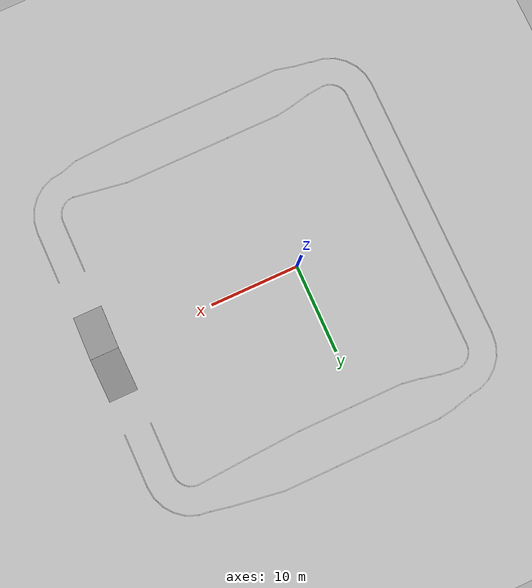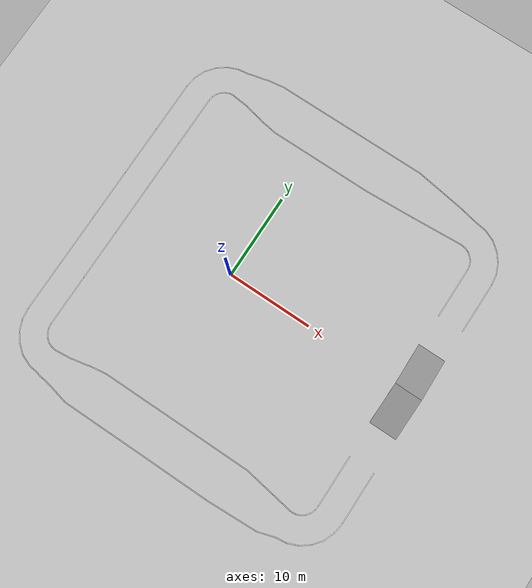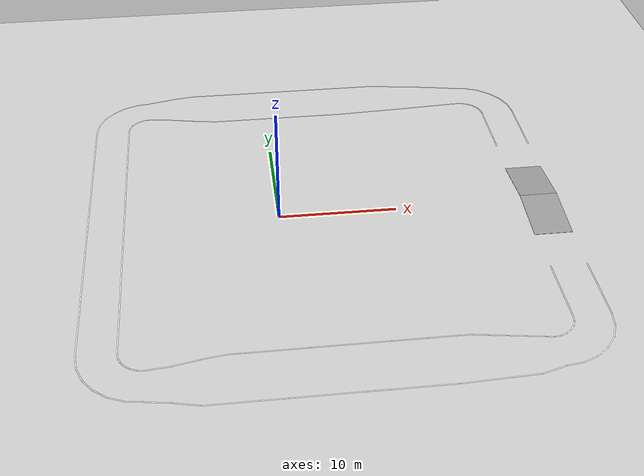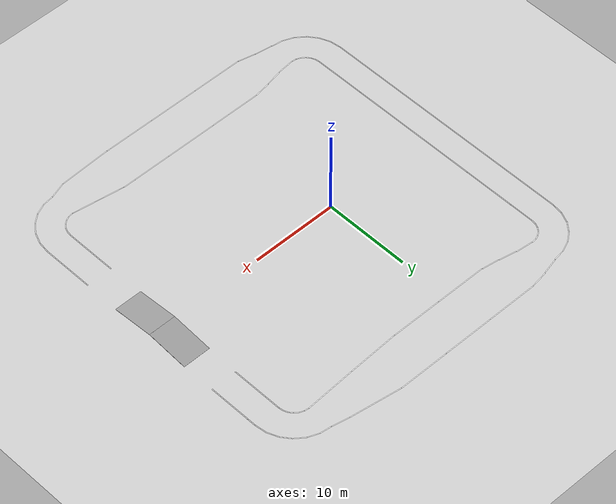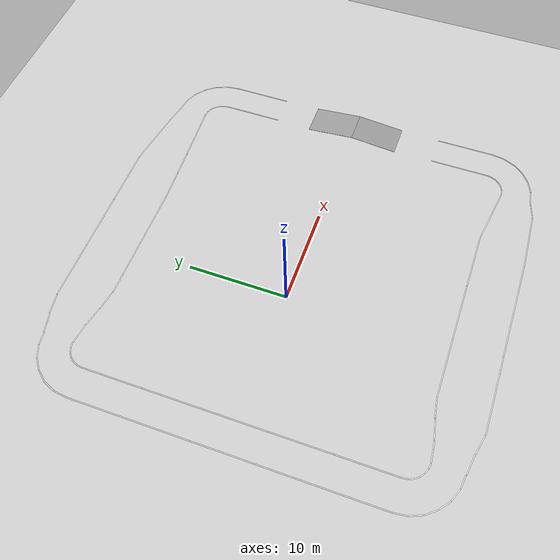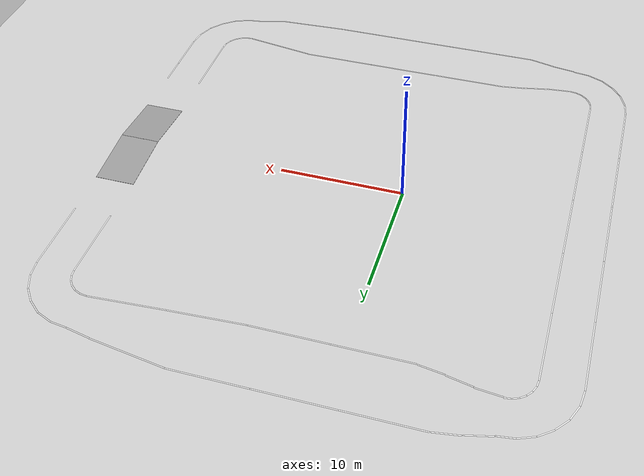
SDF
<sdf version="1.7">
 <world name="default">
  <light name="sun" type="directional">
   <pose>0 0 10 0 -0 0</pose>
   <diffuse>0.8 0.8 0.8 1</diffuse>
   <specular>0.2 0.2 0.2 1</specular>
   <attenuation>
    <range>1000</range>
    <constant>0.9</constant>
    <linear>0.01</linear>
    <quadratic>0.001</quadratic>
   </attenuation>
   <direction>-0.5 0.1 -0.9</direction>
   <spot><inner_angle>0</inner_angle><outer_angle>0</outer_angle><falloff>0</falloff></spot>
  </light>
  <model name="ground_plane">
   <static>1</static>
   <link name="link">
    <collision name="collision">
     <geometry><plane><normal>0 0 1</normal><size>100 100</size></plane></geometry>
     <surface>
      <contact><collide_bitmask>65535</collide_bitmask></contact>
      <friction><ode><mu>100</mu><mu2>50</mu2></ode></friction>
     </surface>
    </collision>
    <visual name="visual">
     <cast_shadows>0</cast_shadows>
     <geometry><plane><normal>0 0 1</normal><size>100 100</size></plane></geometry>
     <material>
      <script><uri>file://media/materials/scripts/gazebo.material</uri><name>Gazebo/Grey</name></script>
     </material>
    </visual>
   </link>
  </model>
  <gravity>0 0 -9.8</gravity>
  <magnetic_field>6e-06 2.3e-05 -4.2e-05</magnetic_field>
  <atmosphere type="adiabatic"/>
  <physics type="ode">
   <max_step_size>0.001</max_step_size>
   <real_time_factor>1</real_time_factor>
   <real_time_update_rate>1000</real_time_update_rate>
  </physics>
  <scene><ambient>0.4 0.4 0.4 1</ambient><background>0.7 0.7 0.7 1</background><shadows>1</shadows></scene>
  <audio><device>default</device></audio>
  <spherical_coordinates>
   <surface_model>EARTH_WGS84</surface_model>
   <latitude_deg>42.668112</latitude_deg>
   <longitude_deg>-83.219140</longitude_deg>
   <elevation>488.0</elevation>
   <heading_deg>180</heading_deg>
  </spherical_coordinates>
  <model name="Lane Straight Pair 6m">
   <static>1</static>
   <link name="link">
    <collision name="collision">
     <pose>0 0 -0.002 0 -0 0</pose>
     <geometry><box><size>0.5 0.5 0.001</size></box></geometry>
    </collision>
    <visual name="lane_0">
     <pose>0 1 0.001 0 -0 0</pose>
     <cast_shadows>0</cast_shadows>
     <geometry><plane><normal>0 0 1</normal><size>6 0.1</size></plane></geometry>
     <material>
      <script><uri>file://media/materials/scripts/gazebo.material</uri><name>Gazebo/White</name></script>
     </material>
    </visual>
    <visual name="lane_1">
     <pose>0 -2 0.001 0 -0 0</pose>
     <cast_shadows>0</cast_shadows>
     <geometry><plane><normal>0 0 1</normal><size>6 0.1</size></plane></geometry>
     <material>
      <script><uri>file://media/materials/scripts/gazebo.material</uri><name>Gazebo/White</name></script>
     </material>
    </visual>
   </link>
   <pose>-15 0 0 0 -0 1.5707</pose>
  </model>
  <model name="Lane Straight Pair 6m_0">
   <static>1</static>
   <link name="link">
    <collision name="collision">
     <pose>0 0 -0.002 0 -0 0</pose>
     <geometry><box><size>0.5 0.5 0.001</size></box></geometry>
    </collision>
    <visual name="lane_0">
     <pose>0 1 0.001 0 -0 0</pose>
     <cast_shadows>0</cast_shadows>
     <geometry><plane><normal>0 0 1</normal><size>6 0.1</size></plane></geometry>
     <material>
      <script><uri>file://media/materials/scripts/gazebo.material</uri><name>Gazebo/White</name></script>
     </material>
    </visual>
    <visual name="lane_1">
     <pose>0 -2 0.001 0 -0 0</pose>
     <cast_shadows>0</cast_shadows>
     <geometry><plane><normal>0 0 1</normal><size>6 0.1</size></plane></geometry>
     <material>
      <script><uri>file://media/materials/scripts/gazebo.material</uri><name>Gazebo/White</name></script>
     </material>
    </visual>
   </link>
   <pose>-15 6 0 0 -0 1.5707</pose>
  </model>
  <model name="Lane Straight Pair 6m_1">
   <static>1</static>
   <link name="link">
    <collision name="collision">
     <pose>0 0 -0.002 0 -0 0</pose>
     <geometry><box><size>0.5 0.5 0.001</size></box></geometry>
    </collision>
    <visual name="lane_0">
     <pose>0 1 0.001 0 -0 0</pose>
     <cast_shadows>0</cast_shadows>
     <geometry><plane><normal>0 0 1</normal><size>6 0.1</size></plane></geometry>
     <material>
      <script><uri>file://media/materials/scripts/gazebo.material</uri><name>Gazebo/White</name></script>
     </material>
    </visual>
    <visual name="lane_1">
     <pose>0 -2 0.001 0 -0 0</pose>
     <cast_shadows>0</cast_shadows>
     <geometry><plane><normal>0 0 1</normal><size>6 0.1</size></plane></geometry>
     <material>
      <script><uri>file://media/materials/scripts/gazebo.material</uri><name>Gazebo/White</name></script>
     </material>
    </visual>
   </link>
   <pose>-15 12 0 0 -0 1.5707</pose>
  </model>
  <model name="Lane Straight Pair 6m_2">
   <static>1</static>
   <link name="link">
    <collision name="collision">
     <pose>0 0 -0.002 0 -0 0</pose>
     <geometry><box><size>0.5 0.5 0.001</size></box></geometry>
    </collision>
    <visual name="lane_0">
     <pose>0 1 0.001 0 -0 0</pose>
     <cast_shadows>0</cast_shadows>
     <geometry><plane><normal>0 0 1</normal><size>6 0.1</size></plane></geometry>
     <material>
      <script><uri>file://media/materials/scripts/gazebo.material</uri><name>Gazebo/White</name></script>
     </material>
    </visual>
    <visual name="lane_1">
     <pose>0 -2 0.001 0 -0 0</pose>
     <cast_shadows>0</cast_shadows>
     <geometry><plane><normal>0 0 1</normal><size>6 0.1</size></plane></geometry>
     <material>
      <script><uri>file://media/materials/scripts/gazebo.material</uri><name>Gazebo/White</name></script>
     </material>
    </visual>
   </link>
   <pose>-15 -6 0 0 -0 1.5707</pose>
  </model>
  <model name="Lane Straight Pair 6m_3">
   <static>1</static>
   <link name="link">
    <collision name="collision">
     <pose>0 0 -0.002 0 -0 0</pose>
     <geometry><box><size>0.5 0.5 0.001</size></box></geometry>
    </collision>
    <visual name="lane_0">
     <pose>0 1 0.001 0 -0 0</pose>
     <cast_shadows>0</cast_shadows>
     <geometry><plane><normal>0 0 1</normal><size>6 0.1</size></plane></geometry>
     <material>
      <script><uri>file://media/materials/scripts/gazebo.material</uri><name>Gazebo/White</name></script>
     </material>
    </visual>
    <visual name="lane_1">
     <pose>0 -2 0.001 0 -0 0</pose>
     <cast_shadows>0</cast_shadows>
     <geometry><plane><normal>0 0 1</normal><size>6 0.1</size></plane></geometry>
     <material>
      <script><uri>file://media/materials/scripts/gazebo.material</uri><name>Gazebo/White</name></script>
     </material>
    </visual>
   </link>
   <pose>-15 -12 0 0 -0 1.5707</pose>
  </model>
  <model name="Lane Curve Pair 2m">
   <static>1</static>
   <link name="link">
    <collision name="collision">
     <pose>0.5 0.5 -0.002 0 -0 0</pose>
     <geometry><box><size>0.5 0.5 0.001</size></box></geometry>
    </collision>
    <visual name="lane_l0">
     <pose>4.9148 0.64705 0.001 0 -0 1.7017</pose>
     <cast_shadows>0</cast_shadows>
     <geometry><plane><normal>0 0 1</normal><size>1.309 0.1</size></plane></geometry>
     <material>
      <script><uri>file://media/materials/scripts/gazebo.material</uri><name>Gazebo/White</name></script>
     </material>
    </visual>
    <visual name="lane_l15">
     <pose>4.5799 1.897 0.001 0 -0 1.9635</pose>
     <cast_shadows>0</cast_shadows>
     <geometry><plane><normal>0 0 1</normal><size>1.309 0.1</size></plane></geometry>
     <material>
      <script><uri>file://media/materials/scripts/gazebo.material</uri><name>Gazebo/White</name></script>
     </material>
    </visual>
    <visual name="lane_l30">
     <pose>3.9328 3.0178 0.001 0 -0 2.2253</pose>
     <cast_shadows>0</cast_shadows>
     <geometry><plane><normal>0 0 1</normal><size>1.309 0.1</size></plane></geometry>
     <material>
      <script><uri>file://media/materials/scripts/gazebo.material</uri><name>Gazebo/White</name></script>
     </material>
    </visual>
    <visual name="lane_l45">
     <pose>3.0178 3.9328 0.001 0 -0 2.4571</pose>
     <cast_shadows>0</cast_shadows>
     <geometry><plane><normal>0 0 1</normal><size>1.309 0.1</size></plane></geometry>
     <material>
      <script><uri>file://media/materials/scripts/gazebo.material</uri><name>Gazebo/White</name></script>
     </material>
    </visual>
    <visual name="lane_l60">
     <pose>1.897 4.5799 0.001 0 -0 2.7489</pose>
     <cast_shadows>0</cast_shadows>
     <geometry><plane><normal>0 0 1</normal><size>1.309 0.1</size></plane></geometry>
     <material>
      <script><uri>file://media/materials/scripts/gazebo.material</uri><name>Gazebo/White</name></script>
     </material>
    </visual>
    <visual name="lane_l75">
     <pose>0.64705 4.9148 0.001 0 -0 3.0107</pose>
     <cast_shadows>0</cast_shadows>
     <geometry><plane><normal>0 0 1</normal><size>1.309 0.1</size></plane></geometry>
     <material>
      <script><uri>file://media/materials/scripts/gazebo.material</uri><name>Gazebo/White</name></script>
     </material>
    </visual>
    <visual name="lane_r0">
     <pose>1.9659 0.25882 0.001 0 -0 1.7017</pose>
     <cast_shadows>0</cast_shadows>
     <geometry><plane><normal>0 0 1</normal><size>0.5236 0.1</size></plane></geometry>
     <material>
      <script><uri>file://media/materials/scripts/gazebo.material</uri><name>Gazebo/White</name></script>
     </material>
    </visual>
    <visual name="lane_r15">
     <pose>1.832 0.75882 0.001 0 -0 1.9635</pose>
     <cast_shadows>0</cast_shadows>
     <geometry><plane><normal>0 0 1</normal><size>0.5236 0.1</size></plane></geometry>
     <material>
      <script><uri>file://media/materials/scripts/gazebo.material</uri><name>Gazebo/White</name></script>
     </material>
    </visual>
    <visual name="lane_r30">
     <pose>1.5731 1.2071 0.001 0 -0 2.2253</pose>
     <cast_shadows>0</cast_shadows>
     <geometry><plane><normal>0 0 1</normal><size>0.5236 0.1</size></plane></geometry>
     <material>
      <script><uri>file://media/materials/scripts/gazebo.material</uri><name>Gazebo/White</name></script>
     </material>
    </visual>
    <visual name="lane_r45">
     <pose>1.2071 1.5731 0.001 0 -0 2.4571</pose>
     <cast_shadows>0</cast_shadows>
     <geometry><plane><normal>0 0 1</normal><size>0.5236 0.1</size></plane></geometry>
     <material>
      <script><uri>file://media/materials/scripts/gazebo.material</uri><name>Gazebo/White</name></script>
     </material>
    </visual>
    <visual name="lane_r60">
     <pose>0.75882 1.832 0.001 0 -0 2.7489</pose>
     <cast_shadows>0</cast_shadows>
     <geometry><plane><normal>0 0 1</normal><size>0.5236 0.1</size></plane></geometry>
     <material>
      <script><uri>file://media/materials/scripts/gazebo.material</uri><name>Gazebo/White</name></script>
     </material>
    </visual>
    <visual name="lane_r75">
     <pose>0.25882 1.9659 0.001 0 -0 3.0107</pose>
     <cast_shadows>0</cast_shadows>
     <geometry><plane><normal>0 0 1</normal><size>0.5236 0.1</size></plane></geometry>
     <material>
      <script><uri>file://media/materials/scripts/gazebo.material</uri><name>Gazebo/White</name></script>
     </material>
    </visual>
   </link>
   <pose>-11 15 0 0 -0 1.5707</pose>
  </model>
  <model name="Lane Curve Pair 2m_0">
   <static>1</static>
   <link name="link">
    <collision name="collision">
     <pose>0.5 0.5 -0.002 0 -0 0</pose>
     <geometry><box><size>0.5 0.5 0.001</size></box></geometry>
    </collision>
    <visual name="lane_l0">
     <pose>4.9148 0.64705 0.001 0 -0 1.7017</pose>
     <cast_shadows>0</cast_shadows>
     <geometry><plane><normal>0 0 1</normal><size>1.309 0.1</size></plane></geometry>
     <material>
      <script><uri>file://media/materials/scripts/gazebo.material</uri><name>Gazebo/White</name></script>
     </material>
    </visual>
    <visual name="lane_l15">
     <pose>4.5799 1.897 0.001 0 -0 1.9635</pose>
     <cast_shadows>0</cast_shadows>
     <geometry><plane><normal>0 0 1</normal><size>1.309 0.1</size></plane></geometry>
     <material>
      <script><uri>file://media/materials/scripts/gazebo.material</uri><name>Gazebo/White</name></script>
     </material>
    </visual>
    <visual name="lane_l30">
     <pose>3.9328 3.0178 0.001 0 -0 2.2253</pose>
     <cast_shadows>0</cast_shadows>
     <geometry><plane><normal>0 0 1</normal><size>1.309 0.1</size></plane></geometry>
     <material>
      <script><uri>file://media/materials/scripts/gazebo.material</uri><name>Gazebo/White</name></script>
     </material>
    </visual>
    <visual name="lane_l45">
     <pose>3.0178 3.9328 0.001 0 -0 2.4571</pose>
     <cast_shadows>0</cast_shadows>
     <geometry><plane><normal>0 0 1</normal><size>1.309 0.1</size></plane></geometry>
     <material>
      <script><uri>file://media/materials/scripts/gazebo.material</uri><name>Gazebo/White</name></script>
     </material>
    </visual>
    <visual name="lane_l60">
     <pose>1.897 4.5799 0.001 0 -0 2.7489</pose>
     <cast_shadows>0</cast_shadows>
     <geometry><plane><normal>0 0 1</normal><size>1.309 0.1</size></plane></geometry>
     <material>
      <script><uri>file://media/materials/scripts/gazebo.material</uri><name>Gazebo/White</name></script>
     </material>
    </visual>
    <visual name="lane_l75">
     <pose>0.64705 4.9148 0.001 0 -0 3.0107</pose>
     <cast_shadows>0</cast_shadows>
     <geometry><plane><normal>0 0 1</normal><size>1.309 0.1</size></plane></geometry>
     <material>
      <script><uri>file://media/materials/scripts/gazebo.material</uri><name>Gazebo/White</name></script>
     </material>
    </visual>
    <visual name="lane_r0">
     <pose>1.9659 0.25882 0.001 0 -0 1.7017</pose>
     <cast_shadows>0</cast_shadows>
     <geometry><plane><normal>0 0 1</normal><size>0.5236 0.1</size></plane></geometry>
     <material>
      <script><uri>file://media/materials/scripts/gazebo.material</uri><name>Gazebo/White</name></script>
     </material>
    </visual>
    <visual name="lane_r15">
     <pose>1.832 0.75882 0.001 0 -0 1.9635</pose>
     <cast_shadows>0</cast_shadows>
     <geometry><plane><normal>0 0 1</normal><size>0.5236 0.1</size></plane></geometry>
     <material>
      <script><uri>file://media/materials/scripts/gazebo.material</uri><name>Gazebo/White</name></script>
     </material>
    </visual>
    <visual name="lane_r30">
     <pose>1.5731 1.2071 0.001 0 -0 2.2253</pose>
     <cast_shadows>0</cast_shadows>
     <geometry><plane><normal>0 0 1</normal><size>0.5236 0.1</size></plane></geometry>
     <material>
      <script><uri>file://media/materials/scripts/gazebo.material</uri><name>Gazebo/White</name></script>
     </material>
    </visual>
    <visual name="lane_r45">
     <pose>1.2071 1.5731 0.001 0 -0 2.4571</pose>
     <cast_shadows>0</cast_shadows>
     <geometry><plane><normal>0 0 1</normal><size>0.5236 0.1</size></plane></geometry>
     <material>
      <script><uri>file://media/materials/scripts/gazebo.material</uri><name>Gazebo/White</name></script>
     </material>
    </visual>
    <visual name="lane_r60">
     <pose>0.75882 1.832 0.001 0 -0 2.7489</pose>
     <cast_shadows>0</cast_shadows>
     <geometry><plane><normal>0 0 1</normal><size>0.5236 0.1</size></plane></geometry>
     <material>
      <script><uri>file://media/materials/scripts/gazebo.material</uri><name>Gazebo/White</name></script>
     </material>
    </visual>
    <visual name="lane_r75">
     <pose>0.25882 1.9659 0.001 0 -0 3.0107</pose>
     <cast_shadows>0</cast_shadows>
     <geometry><plane><normal>0 0 1</normal><size>0.5236 0.1</size></plane></geometry>
     <material>
      <script><uri>file://media/materials/scripts/gazebo.material</uri><name>Gazebo/White</name></script>
     </material>
    </visual>
   </link>
   <pose>-11 -15 0 0 -0 3.1414</pose>
  </model>
  <model name="Lane Straight Single 2m">
   <static>1</static>
   <link name="link">
    <collision name="collision">
     <pose>0 0 -0.002 0 -0 0</pose>
     <geometry><box><size>0.5 0.5 0.001</size></box></geometry>
    </collision>
    <visual name="lane">
     <pose>0 0 0.001 0 -0 0</pose>
     <cast_shadows>0</cast_shadows>
     <geometry><plane><normal>0 0 1</normal><size>2 0.1</size></plane></geometry>
     <material>
      <script><uri>file://media/materials/scripts/gazebo.material</uri><name>Gazebo/White</name></script>
     </material>
    </visual>
   </link>
   <pose>-10.005 20.275 0 0 -0 0.23</pose>
  </model>
  <model name="Lane Straight Single 2m_0">
   <static>1</static>
   <link name="link">
    <collision name="collision">
     <pose>0 0 -0.002 0 -0 0</pose>
     <geometry><box><size>0.5 0.5 0.001</size></box></geometry>
    </collision>
    <visual name="lane">
     <pose>0 0 0.001 0 -0 0</pose>
     <cast_shadows>0</cast_shadows>
     <geometry><plane><normal>0 0 1</normal><size>2 0.1</size></plane></geometry>
     <material>
      <script><uri>file://media/materials/scripts/gazebo.material</uri><name>Gazebo/White</name></script>
     </material>
    </visual>
   </link>
   <pose>-10 16.85 0 0 0 -0.1</pose>
  </model>
  <model name="Lane Straight Single 2m_1">
   <static>1</static>
   <link name="link">
    <collision name="collision">
     <pose>0 0 -0.002 0 -0 0</pose>
     <geometry><box><size>0.5 0.5 0.001</size></box></geometry>
    </collision>
    <visual name="lane">
     <pose>0 0 0.001 0 -0 0</pose>
     <cast_shadows>0</cast_shadows>
     <geometry><plane><normal>0 0 1</normal><size>2 0.1</size></plane></geometry>
     <material>
      <script><uri>file://media/materials/scripts/gazebo.material</uri><name>Gazebo/White</name></script>
     </material>
    </visual>
   </link>
   <pose>-8.03 20.7 0 0 -0 0.15</pose>
  </model>
  <model name="Lane Straight Single 2m_2">
   <static>1</static>
   <link name="link">
    <collision name="collision">
     <pose>0 0 -0.002 0 -0 0</pose>
     <geometry><box><size>0.5 0.5 0.001</size></box></geometry>
    </collision>
    <visual name="lane">
     <pose>0 0 0.001 0 -0 0</pose>
     <cast_shadows>0</cast_shadows>
     <geometry><plane><normal>0 0 1</normal><size>2 0.1</size></plane></geometry>
     <material>
      <script><uri>file://media/materials/scripts/gazebo.material</uri><name>Gazebo/White</name></script>
     </material>
    </visual>
   </link>
   <pose>-8 16.5 0 0 0 -0.199999</pose>
  </model>
  <model name="Lane Straight Single 2m_3">
   <static>1</static>
   <link name="link">
    <collision name="collision">
     <pose>0 0 -0.002 0 -0 0</pose>
     <geometry><box><size>0.5 0.5 0.001</size></box></geometry>
    </collision>
    <visual name="lane">
     <pose>0 0 0.001 0 -0 0</pose>
     <cast_shadows>0</cast_shadows>
     <geometry><plane><normal>0 0 1</normal><size>2 0.1</size></plane></geometry>
     <material>
      <script><uri>file://media/materials/scripts/gazebo.material</uri><name>Gazebo/White</name></script>
     </material>
    </visual>
   </link>
   <pose>-6 16.1 0 0 0 -0.15</pose>
  </model>
  <model name="Lane Straight Single 6m">
   <static>1</static>
   <link name="link">
    <collision name="collision">
     <pose>0 0 -0.002 0 -0 0</pose>
     <geometry><box><size>0.5 0.5 0.001</size></box></geometry>
    </collision>
    <visual name="lane">
     <pose>0 0 0.001 0 -0 0</pose>
     <cast_shadows>0</cast_shadows>
     <geometry><plane><normal>0 0 1</normal><size>6 0.1</size></plane></geometry>
     <material>
      <script><uri>file://media/materials/scripts/gazebo.material</uri><name>Gazebo/White</name></script>
     </material>
    </visual>
   </link>
   <pose>-4.01204 20.8673 0 0 -0 0</pose>
  </model>
  <model name="Lane Straight Single 6m_0">
   <static>1</static>
   <link name="link">
    <collision name="collision">
     <pose>0 0 -0.002 0 -0 0</pose>
     <geometry><box><size>0.5 0.5 0.001</size></box></geometry>
    </collision>
    <visual name="lane">
     <pose>0 0 0.001 0 -0 0</pose>
     <cast_shadows>0</cast_shadows>
     <geometry><plane><normal>0 0 1</normal><size>6 0.1</size></plane></geometry>
     <material>
      <script><uri>file://media/materials/scripts/gazebo.material</uri><name>Gazebo/White</name></script>
     </material>
    </visual>
   </link>
   <pose>-1.98032 15.9145 0 0 -0 0</pose>
  </model>
  <model name="Lane Straight Single 6m_1">
   <static>1</static>
   <link name="link">
    <collision name="collision">
     <pose>0 0 -0.002 0 -0 0</pose>
     <geometry><box><size>0.5 0.5 0.001</size></box></geometry>
    </collision>
    <visual name="lane">
     <pose>0 0 0.001 0 -0 0</pose>
     <cast_shadows>0</cast_shadows>
     <geometry><plane><normal>0 0 1</normal><size>6 0.1</size></plane></geometry>
     <material>
      <script><uri>file://media/materials/scripts/gazebo.material</uri><name>Gazebo/White</name></script>
     </material>
    </visual>
   </link>
   <pose>1.98526 20.8734 0 0 -0 0</pose>
  </model>
  <model name="Lane Straight Single 6m_2">
   <static>1</static>
   <link name="link">
    <collision name="collision">
     <pose>0 0 -0.002 0 -0 0</pose>
     <geometry><box><size>0.5 0.5 0.001</size></box></geometry>
    </collision>
    <visual name="lane">
     <pose>0 0 0.001 0 -0 0</pose>
     <cast_shadows>0</cast_shadows>
     <geometry><plane><normal>0 0 1</normal><size>6 0.1</size></plane></geometry>
     <material>
      <script><uri>file://media/materials/scripts/gazebo.material</uri><name>Gazebo/White</name></script>
     </material>
    </visual>
   </link>
   <pose>4.02648 15.9099 0 0 -0 0</pose>
  </model>
  <model name="Lane Straight Single 6m_3">
   <static>1</static>
   <link name="link">
    <collision name="collision">
     <pose>0 0 -0.002 0 -0 0</pose>
     <geometry><box><size>0.5 0.5 0.001</size></box></geometry>
    </collision>
    <visual name="lane">
     <pose>0 0 0.001 0 -0 0</pose>
     <cast_shadows>0</cast_shadows>
     <geometry><plane><normal>0 0 1</normal><size>6 0.1</size></plane></geometry>
     <material>
      <script><uri>file://media/materials/scripts/gazebo.material</uri><name>Gazebo/White</name></script>
     </material>
    </visual>
   </link>
   <pose>8.01121 20.8782 0 0 -0 0</pose>
  </model>
  <model name="Lane Curve Pair 2m_1">
   <static>1</static>
   <link name="link">
    <collision name="collision">
     <pose>0.5 0.5 -0.002 0 -0 0</pose>
     <geometry><box><size>0.5 0.5 0.001</size></box></geometry>
    </collision>
    <visual name="lane_l0">
     <pose>4.9148 0.64705 0.001 0 -0 1.7017</pose>
     <cast_shadows>0</cast_shadows>
     <geometry><plane><normal>0 0 1</normal><size>1.309 0.1</size></plane></geometry>
     <material>
      <script><uri>file://media/materials/scripts/gazebo.material</uri><name>Gazebo/White</name></script>
     </material>
    </visual>
    <visual name="lane_l15">
     <pose>4.5799 1.897 0.001 0 -0 1.9635</pose>
     <cast_shadows>0</cast_shadows>
     <geometry><plane><normal>0 0 1</normal><size>1.309 0.1</size></plane></geometry>
     <material>
      <script><uri>file://media/materials/scripts/gazebo.material</uri><name>Gazebo/White</name></script>
     </material>
    </visual>
    <visual name="lane_l30">
     <pose>3.9328 3.0178 0.001 0 -0 2.2253</pose>
     <cast_shadows>0</cast_shadows>
     <geometry><plane><normal>0 0 1</normal><size>1.309 0.1</size></plane></geometry>
     <material>
      <script><uri>file://media/materials/scripts/gazebo.material</uri><name>Gazebo/White</name></script>
     </material>
    </visual>
    <visual name="lane_l45">
     <pose>3.0178 3.9328 0.001 0 -0 2.4571</pose>
     <cast_shadows>0</cast_shadows>
     <geometry><plane><normal>0 0 1</normal><size>1.309 0.1</size></plane></geometry>
     <material>
      <script><uri>file://media/materials/scripts/gazebo.material</uri><name>Gazebo/White</name></script>
     </material>
    </visual>
    <visual name="lane_l60">
     <pose>1.897 4.5799 0.001 0 -0 2.7489</pose>
     <cast_shadows>0</cast_shadows>
     <geometry><plane><normal>0 0 1</normal><size>1.309 0.1</size></plane></geometry>
     <material>
      <script><uri>file://media/materials/scripts/gazebo.material</uri><name>Gazebo/White</name></script>
     </material>
    </visual>
    <visual name="lane_l75">
     <pose>0.64705 4.9148 0.001 0 -0 3.0107</pose>
     <cast_shadows>0</cast_shadows>
     <geometry><plane><normal>0 0 1</normal><size>1.309 0.1</size></plane></geometry>
     <material>
      <script><uri>file://media/materials/scripts/gazebo.material</uri><name>Gazebo/White</name></script>
     </material>
    </visual>
    <visual name="lane_r0">
     <pose>1.9659 0.25882 0.001 0 -0 1.7017</pose>
     <cast_shadows>0</cast_shadows>
     <geometry><plane><normal>0 0 1</normal><size>0.5236 0.1</size></plane></geometry>
     <material>
      <script><uri>file://media/materials/scripts/gazebo.material</uri><name>Gazebo/White</name></script>
     </material>
    </visual>
    <visual name="lane_r15">
     <pose>1.832 0.75882 0.001 0 -0 1.9635</pose>
     <cast_shadows>0</cast_shadows>
     <geometry><plane><normal>0 0 1</normal><size>0.5236 0.1</size></plane></geometry>
     <material>
      <script><uri>file://media/materials/scripts/gazebo.material</uri><name>Gazebo/White</name></script>
     </material>
    </visual>
    <visual name="lane_r30">
     <pose>1.5731 1.2071 0.001 0 -0 2.2253</pose>
     <cast_shadows>0</cast_shadows>
     <geometry><plane><normal>0 0 1</normal><size>0.5236 0.1</size></plane></geometry>
     <material>
      <script><uri>file://media/materials/scripts/gazebo.material</uri><name>Gazebo/White</name></script>
     </material>
    </visual>
    <visual name="lane_r45">
     <pose>1.2071 1.5731 0.001 0 -0 2.4571</pose>
     <cast_shadows>0</cast_shadows>
     <geometry><plane><normal>0 0 1</normal><size>0.5236 0.1</size></plane></geometry>
     <material>
      <script><uri>file://media/materials/scripts/gazebo.material</uri><name>Gazebo/White</name></script>
     </material>
    </visual>
    <visual name="lane_r60">
     <pose>0.75882 1.832 0.001 0 -0 2.7489</pose>
     <cast_shadows>0</cast_shadows>
     <geometry><plane><normal>0 0 1</normal><size>0.5236 0.1</size></plane></geometry>
     <material>
      <script><uri>file://media/materials/scripts/gazebo.material</uri><name>Gazebo/White</name></script>
     </material>
    </visual>
    <visual name="lane_r75">
     <pose>0.25882 1.9659 0.001 0 -0 3.0107</pose>
     <cast_shadows>0</cast_shadows>
     <geometry><plane><normal>0 0 1</normal><size>0.5236 0.1</size></plane></geometry>
     <material>
      <script><uri>file://media/materials/scripts/gazebo.material</uri><name>Gazebo/White</name></script>
     </material>
    </visual>
   </link>
   <pose>18.95 14.55 0 0 -0 0</pose>
  </model>
  <model name="Lane Straight Single 6m_4">
   <static>1</static>
   <link name="link">
    <collision name="collision">
     <pose>0 0 -0.002 0 -0 0</pose>
     <geometry><box><size>0.5 0.5 0.001</size></box></geometry>
    </collision>
    <visual name="lane">
     <pose>0 0 0.001 0 -0 0</pose>
     <cast_shadows>0</cast_shadows>
     <geometry><plane><normal>0 0 1</normal><size>6 0.1</size></plane></geometry>
     <material>
      <script><uri>file://media/materials/scripts/gazebo.material</uri><name>Gazebo/White</name></script>
     </material>
    </visual>
   </link>
   <pose>14 20.42 0 0 0 -0.15</pose>
  </model>
  <model name="Lane Straight Single 2m_4">
   <static>1</static>
   <link name="link">
    <collision name="collision">
     <pose>0 0 -0.002 0 -0 0</pose>
     <geometry><box><size>0.5 0.5 0.001</size></box></geometry>
    </collision>
    <visual name="lane">
     <pose>0 0 0.001 0 -0 0</pose>
     <cast_shadows>0</cast_shadows>
     <geometry><plane><normal>0 0 1</normal><size>2 0.1</size></plane></geometry>
     <material>
      <script><uri>file://media/materials/scripts/gazebo.material</uri><name>Gazebo/White</name></script>
     </material>
    </visual>
   </link>
   <pose>17.95 19.759 0 0 0 -0.2</pose>
  </model>
  <model name="Lane Straight Single 6m_5">
   <static>1</static>
   <link name="link">
    <collision name="collision">
     <pose>0 0 -0.002 0 -0 0</pose>
     <geometry><box><size>0.5 0.5 0.001</size></box></geometry>
    </collision>
    <visual name="lane">
     <pose>0 0 0.001 0 -0 0</pose>
     <cast_shadows>0</cast_shadows>
     <geometry><plane><normal>0 0 1</normal><size>6 0.1</size></plane></geometry>
     <material>
      <script><uri>file://media/materials/scripts/gazebo.material</uri><name>Gazebo/White</name></script>
     </material>
    </visual>
   </link>
   <pose>10 16.05 0 0 -0 0.05</pose>
  </model>
  <model name="Lane Straight Single 6m_6">
   <static>1</static>
   <link name="link">
    <collision name="collision">
     <pose>0 0 -0.002 0 -0 0</pose>
     <geometry><box><size>0.5 0.5 0.001</size></box></geometry>
    </collision>
    <visual name="lane">
     <pose>0 0 0.001 0 -0 0</pose>
     <cast_shadows>0</cast_shadows>
     <geometry><plane><normal>0 0 1</normal><size>6 0.1</size></plane></geometry>
     <material>
      <script><uri>file://media/materials/scripts/gazebo.material</uri><name>Gazebo/White</name></script>
     </material>
    </visual>
   </link>
   <pose>15.95 16.375 0 0 -0 0.059991</pose>
  </model>
  <model name="Lane Straight Pair 6m_4">
   <static>1</static>
   <link name="link">
    <collision name="collision">
     <pose>0 0 -0.002 0 -0 0</pose>
     <geometry><box><size>0.5 0.5 0.001</size></box></geometry>
    </collision>
    <visual name="lane_0">
     <pose>0 1 0.001 0 -0 0</pose>
     <cast_shadows>0</cast_shadows>
     <geometry><plane><normal>0 0 1</normal><size>6 0.1</size></plane></geometry>
     <material>
      <script><uri>file://media/materials/scripts/gazebo.material</uri><name>Gazebo/White</name></script>
     </material>
    </visual>
    <visual name="lane_1">
     <pose>0 -2 0.001 0 -0 0</pose>
     <cast_shadows>0</cast_shadows>
     <geometry><plane><normal>0 0 1</normal><size>6 0.1</size></plane></geometry>
     <material>
      <script><uri>file://media/materials/scripts/gazebo.material</uri><name>Gazebo/White</name></script>
     </material>
    </visual>
   </link>
   <pose>21.95 11.6 0 0 -0 1.5707</pose>
  </model>
  <model name="Lane Straight Single 2m_5">
   <static>1</static>
   <link name="link">
    <collision name="collision">
     <pose>0 0 -0.002 0 -0 0</pose>
     <geometry><box><size>0.5 0.5 0.001</size></box></geometry>
    </collision>
    <visual name="lane">
     <pose>0 0 0.001 0 -0 0</pose>
     <cast_shadows>0</cast_shadows>
     <geometry><plane><normal>0 0 1</normal><size>2 0.1</size></plane></geometry>
     <material>
      <script><uri>file://media/materials/scripts/gazebo.material</uri><name>Gazebo/White</name></script>
     </material>
    </visual>
   </link>
   <pose>-10 -20.2 0 0 0 -0.15</pose>
  </model>
  <model name="Lane Straight Single 2m_6">
   <static>1</static>
   <link name="link">
    <collision name="collision">
     <pose>0 0 -0.002 0 -0 0</pose>
     <geometry><box><size>0.5 0.5 0.001</size></box></geometry>
    </collision>
    <visual name="lane">
     <pose>0 0 0.001 0 -0 0</pose>
     <cast_shadows>0</cast_shadows>
     <geometry><plane><normal>0 0 1</normal><size>2 0.1</size></plane></geometry>
     <material>
      <script><uri>file://media/materials/scripts/gazebo.material</uri><name>Gazebo/White</name></script>
     </material>
    </visual>
   </link>
   <pose>-10 -16.9 0 0 -0 0.1</pose>
  </model>
  <model name="Lane Straight Single 2m_7">
   <static>1</static>
   <link name="link">
    <collision name="collision">
     <pose>0 0 -0.002 0 -0 0</pose>
     <geometry><box><size>0.5 0.5 0.001</size></box></geometry>
    </collision>
    <visual name="lane">
     <pose>0 0 0.001 0 -0 0</pose>
     <cast_shadows>0</cast_shadows>
     <geometry><plane><normal>0 0 1</normal><size>2 0.1</size></plane></geometry>
     <material>
      <script><uri>file://media/materials/scripts/gazebo.material</uri><name>Gazebo/White</name></script>
     </material>
    </visual>
   </link>
   <pose>-8.025 -16.575 0 0 -0 0.2</pose>
  </model>
  <model name="Lane Straight Single 2m_8">
   <static>1</static>
   <link name="link">
    <collision name="collision">
     <pose>0 0 -0.002 0 -0 0</pose>
     <geometry><box><size>0.5 0.5 0.001</size></box></geometry>
    </collision>
    <visual name="lane">
     <pose>0 0 0.001 0 -0 0</pose>
     <cast_shadows>0</cast_shadows>
     <geometry><plane><normal>0 0 1</normal><size>2 0.1</size></plane></geometry>
     <material>
      <script><uri>file://media/materials/scripts/gazebo.material</uri><name>Gazebo/White</name></script>
     </material>
    </visual>
   </link>
   <pose>-8.03 -20.6 0 0 0 -0.23</pose>
  </model>
  <model name="Lane Straight Single 2m_9">
   <static>1</static>
   <link name="link">
    <collision name="collision">
     <pose>0 0 -0.002 0 -0 0</pose>
     <geometry><box><size>0.5 0.5 0.001</size></box></geometry>
    </collision>
    <visual name="lane">
     <pose>0 0 0.001 0 -0 0</pose>
     <cast_shadows>0</cast_shadows>
     <geometry><plane><normal>0 0 1</normal><size>2 0.1</size></plane></geometry>
     <material>
      <script><uri>file://media/materials/scripts/gazebo.material</uri><name>Gazebo/White</name></script>
     </material>
    </visual>
   </link>
   <pose>-6.05 -16.2 0 0 -0 0.15</pose>
  </model>
  <model name="Lane Straight Single 6m_7">
   <static>1</static>
   <link name="link">
    <collision name="collision">
     <pose>0 0 -0.002 0 -0 0</pose>
     <geometry><box><size>0.5 0.5 0.001</size></box></geometry>
    </collision>
    <visual name="lane">
     <pose>0 0 0.001 0 -0 0</pose>
     <cast_shadows>0</cast_shadows>
     <geometry><plane><normal>0 0 1</normal><size>6 0.1</size></plane></geometry>
     <material>
      <script><uri>file://media/materials/scripts/gazebo.material</uri><name>Gazebo/White</name></script>
     </material>
    </visual>
   </link>
   <pose>-4.04735 -20.8469 0 0 -0 0</pose>
  </model>
  <model name="Lane Straight Single 6m_8">
   <static>1</static>
   <link name="link">
    <collision name="collision">
     <pose>0 0 -0.002 0 -0 0</pose>
     <geometry><box><size>0.5 0.5 0.001</size></box></geometry>
    </collision>
    <visual name="lane">
     <pose>0 0 0.001 0 -0 0</pose>
     <cast_shadows>0</cast_shadows>
     <geometry><plane><normal>0 0 1</normal><size>6 0.1</size></plane></geometry>
     <material>
      <script><uri>file://media/materials/scripts/gazebo.material</uri><name>Gazebo/White</name></script>
     </material>
    </visual>
   </link>
   <pose>1.96141 -20.8432 0 0 -0 0</pose>
  </model>
  <model name="Lane Straight Single 6m_9">
   <static>1</static>
   <link name="link">
    <collision name="collision">
     <pose>0 0 -0.002 0 -0 0</pose>
     <geometry><box><size>0.5 0.5 0.001</size></box></geometry>
    </collision>
    <visual name="lane">
     <pose>0 0 0.001 0 -0 0</pose>
     <cast_shadows>0</cast_shadows>
     <geometry><plane><normal>0 0 1</normal><size>6 0.1</size></plane></geometry>
     <material>
      <script><uri>file://media/materials/scripts/gazebo.material</uri><name>Gazebo/White</name></script>
     </material>
    </visual>
   </link>
   <pose>7.97 -20.85 0 0 -0 0</pose>
  </model>
  <model name="Lane Straight Single 6m_10">
   <static>1</static>
   <link name="link">
    <collision name="collision">
     <pose>0 0 -0.002 0 -0 0</pose>
     <geometry><box><size>0.5 0.5 0.001</size></box></geometry>
    </collision>
    <visual name="lane">
     <pose>0 0 0.001 0 -0 0</pose>
     <cast_shadows>0</cast_shadows>
     <geometry><plane><normal>0 0 1</normal><size>6 0.1</size></plane></geometry>
     <material>
      <script><uri>file://media/materials/scripts/gazebo.material</uri><name>Gazebo/White</name></script>
     </material>
    </visual>
   </link>
   <pose>-2.05671 -16.0504 0 0 -0 0</pose>
  </model>
  <model name="Lane Straight Single 6m_11">
   <static>1</static>
   <link name="link">
    <collision name="collision">
     <pose>0 0 -0.002 0 -0 0</pose>
     <geometry><box><size>0.5 0.5 0.001</size></box></geometry>
    </collision>
    <visual name="lane">
     <pose>0 0 0.001 0 -0 0</pose>
     <cast_shadows>0</cast_shadows>
     <geometry><plane><normal>0 0 1</normal><size>6 0.1</size></plane></geometry>
     <material>
      <script><uri>file://media/materials/scripts/gazebo.material</uri><name>Gazebo/White</name></script>
     </material>
    </visual>
   </link>
   <pose>3.96328 -16.0406 0 0 -0 0</pose>
  </model>
  <model name="Lane Straight Single 6m_12">
   <static>1</static>
   <link name="link">
    <collision name="collision">
     <pose>0 0 -0.002 0 -0 0</pose>
     <geometry><box><size>0.5 0.5 0.001</size></box></geometry>
    </collision>
    <visual name="lane">
     <pose>0 0 0.001 0 -0 0</pose>
     <cast_shadows>0</cast_shadows>
     <geometry><plane><normal>0 0 1</normal><size>6 0.1</size></plane></geometry>
     <material>
      <script><uri>file://media/materials/scripts/gazebo.material</uri><name>Gazebo/White</name></script>
     </material>
    </visual>
   </link>
   <pose>9.96215 -16.0434 0 0 -0 0</pose>
  </model>
  <model name="Lane Straight Single 6m_13">
   <static>1</static>
   <link name="link">
    <collision name="collision">
     <pose>0 0 -0.002 0 -0 0</pose>
     <geometry><box><size>0.5 0.5 0.001</size></box></geometry>
    </collision>
    <visual name="lane">
     <pose>0 0 0.001 0 -0 0</pose>
     <cast_shadows>0</cast_shadows>
     <geometry><plane><normal>0 0 1</normal><size>6 0.1</size></plane></geometry>
     <material>
      <script><uri>file://media/materials/scripts/gazebo.material</uri><name>Gazebo/White</name></script>
     </material>
    </visual>
   </link>
   <pose>15.95 -16.53 0 0 0 -0.155</pose>
  </model>
  <model name="Lane Straight Single 6m_14">
   <static>1</static>
   <link name="link">
    <collision name="collision">
     <pose>0 0 -0.002 0 -0 0</pose>
     <geometry><box><size>0.5 0.5 0.001</size></box></geometry>
    </collision>
    <visual name="lane">
     <pose>0 0 0.001 0 -0 0</pose>
     <cast_shadows>0</cast_shadows>
     <geometry><plane><normal>0 0 1</normal><size>6 0.1</size></plane></geometry>
     <material>
      <script><uri>file://media/materials/scripts/gazebo.material</uri><name>Gazebo/White</name></script>
     </material>
    </visual>
   </link>
   <pose>14 -20.725 0 0 -0 0.0455</pose>
  </model>
  <model name="Lane Straight Single 2m_10">
   <static>1</static>
   <link name="link">
    <collision name="collision">
     <pose>0 0 -0.002 0 -0 0</pose>
     <geometry><box><size>0.5 0.5 0.001</size></box></geometry>
    </collision>
    <visual name="lane">
     <pose>0 0 0.001 0 -0 0</pose>
     <cast_shadows>0</cast_shadows>
     <geometry><plane><normal>0 0 1</normal><size>2 0.1</size></plane></geometry>
     <material>
      <script><uri>file://media/materials/scripts/gazebo.material</uri><name>Gazebo/White</name></script>
     </material>
    </visual>
   </link>
   <pose>17.98 -20.3 0 0 -0 0.3</pose>
  </model>
  <model name="Lane Curve Pair 2m_2">
   <static>1</static>
   <link name="link">
    <collision name="collision">
     <pose>0.5 0.5 -0.002 0 -0 0</pose>
     <geometry><box><size>0.5 0.5 0.001</size></box></geometry>
    </collision>
    <visual name="lane_l0">
     <pose>4.9148 0.64705 0.001 0 -0 1.7017</pose>
     <cast_shadows>0</cast_shadows>
     <geometry><plane><normal>0 0 1</normal><size>1.309 0.1</size></plane></geometry>
     <material>
      <script><uri>file://media/materials/scripts/gazebo.material</uri><name>Gazebo/White</name></script>
     </material>
    </visual>
    <visual name="lane_l15">
     <pose>4.5799 1.897 0.001 0 -0 1.9635</pose>
     <cast_shadows>0</cast_shadows>
     <geometry><plane><normal>0 0 1</normal><size>1.309 0.1</size></plane></geometry>
     <material>
      <script><uri>file://media/materials/scripts/gazebo.material</uri><name>Gazebo/White</name></script>
     </material>
    </visual>
    <visual name="lane_l30">
     <pose>3.9328 3.0178 0.001 0 -0 2.2253</pose>
     <cast_shadows>0</cast_shadows>
     <geometry><plane><normal>0 0 1</normal><size>1.309 0.1</size></plane></geometry>
     <material>
      <script><uri>file://media/materials/scripts/gazebo.material</uri><name>Gazebo/White</name></script>
     </material>
    </visual>
    <visual name="lane_l45">
     <pose>3.0178 3.9328 0.001 0 -0 2.4571</pose>
     <cast_shadows>0</cast_shadows>
     <geometry><plane><normal>0 0 1</normal><size>1.309 0.1</size></plane></geometry>
     <material>
      <script><uri>file://media/materials/scripts/gazebo.material</uri><name>Gazebo/White</name></script>
     </material>
    </visual>
    <visual name="lane_l60">
     <pose>1.897 4.5799 0.001 0 -0 2.7489</pose>
     <cast_shadows>0</cast_shadows>
     <geometry><plane><normal>0 0 1</normal><size>1.309 0.1</size></plane></geometry>
     <material>
      <script><uri>file://media/materials/scripts/gazebo.material</uri><name>Gazebo/White</name></script>
     </material>
    </visual>
    <visual name="lane_l75">
     <pose>0.64705 4.9148 0.001 0 -0 3.0107</pose>
     <cast_shadows>0</cast_shadows>
     <geometry><plane><normal>0 0 1</normal><size>1.309 0.1</size></plane></geometry>
     <material>
      <script><uri>file://media/materials/scripts/gazebo.material</uri><name>Gazebo/White</name></script>
     </material>
    </visual>
    <visual name="lane_r0">
     <pose>1.9659 0.25882 0.001 0 -0 1.7017</pose>
     <cast_shadows>0</cast_shadows>
     <geometry><plane><normal>0 0 1</normal><size>0.5236 0.1</size></plane></geometry>
     <material>
      <script><uri>file://media/materials/scripts/gazebo.material</uri><name>Gazebo/White</name></script>
     </material>
    </visual>
    <visual name="lane_r15">
     <pose>1.832 0.75882 0.001 0 -0 1.9635</pose>
     <cast_shadows>0</cast_shadows>
     <geometry><plane><normal>0 0 1</normal><size>0.5236 0.1</size></plane></geometry>
     <material>
      <script><uri>file://media/materials/scripts/gazebo.material</uri><name>Gazebo/White</name></script>
     </material>
    </visual>
    <visual name="lane_r30">
     <pose>1.5731 1.2071 0.001 0 -0 2.2253</pose>
     <cast_shadows>0</cast_shadows>
     <geometry><plane><normal>0 0 1</normal><size>0.5236 0.1</size></plane></geometry>
     <material>
      <script><uri>file://media/materials/scripts/gazebo.material</uri><name>Gazebo/White</name></script>
     </material>
    </visual>
    <visual name="lane_r45">
     <pose>1.2071 1.5731 0.001 0 -0 2.4571</pose>
     <cast_shadows>0</cast_shadows>
     <geometry><plane><normal>0 0 1</normal><size>0.5236 0.1</size></plane></geometry>
     <material>
      <script><uri>file://media/materials/scripts/gazebo.material</uri><name>Gazebo/White</name></script>
     </material>
    </visual>
    <visual name="lane_r60">
     <pose>0.75882 1.832 0.001 0 -0 2.7489</pose>
     <cast_shadows>0</cast_shadows>
     <geometry><plane><normal>0 0 1</normal><size>0.5236 0.1</size></plane></geometry>
     <material>
      <script><uri>file://media/materials/scripts/gazebo.material</uri><name>Gazebo/White</name></script>
     </material>
    </visual>
    <visual name="lane_r75">
     <pose>0.25882 1.9659 0.001 0 -0 3.0107</pose>
     <cast_shadows>0</cast_shadows>
     <geometry><plane><normal>0 0 1</normal><size>0.5236 0.1</size></plane></geometry>
     <material>
      <script><uri>file://media/materials/scripts/gazebo.material</uri><name>Gazebo/White</name></script>
     </material>
    </visual>
   </link>
   <pose>18.95 -15 0 0 0 -1.5707</pose>
  </model>
  <model name="Lane Straight Pair 6m_5">
   <static>1</static>
   <link name="link">
    <collision name="collision">
     <pose>0 0 -0.002 0 -0 0</pose>
     <geometry><box><size>0.5 0.5 0.001</size></box></geometry>
    </collision>
    <visual name="lane_0">
     <pose>0 1 0.001 0 -0 0</pose>
     <cast_shadows>0</cast_shadows>
     <geometry><plane><normal>0 0 1</normal><size>6 0.1</size></plane></geometry>
     <material>
      <script><uri>file://media/materials/scripts/gazebo.material</uri><name>Gazebo/White</name></script>
     </material>
    </visual>
    <visual name="lane_1">
     <pose>0 -2 0.001 0 -0 0</pose>
     <cast_shadows>0</cast_shadows>
     <geometry><plane><normal>0 0 1</normal><size>6 0.1</size></plane></geometry>
     <material>
      <script><uri>file://media/materials/scripts/gazebo.material</uri><name>Gazebo/White</name></script>
     </material>
    </visual>
   </link>
   <pose>21.95 -12 0 0 -0 1.5707</pose>
  </model>
  <model name="testtt">
   <link name="link_0">
    <inertial>
     <mass>0.337574</mass>
     <inertia>
      <ixx>0.296223</ixx>
      <ixy>0</ixy>
      <ixz>0</ixz>
      <iyy>0.680459</iyy>
      <iyz>0</iyz>
      <izz>0.976656</izz>
     </inertia>
    </inertial>
    <pose>2.4412 -0 0 0 0.1 0</pose>
    <visual name="visual">
     <geometry><box><size>4.91817 3.24494 0.021454</size></box></geometry>
     <material>
      <lighting>1</lighting>
      <script><uri>file://media/materials/scripts/gazebo.material</uri><name>Gazebo/Grey</name></script>
      <shader type="pixel"><normal_map>__default__</normal_map></shader>
      <ambient>0.3 0.3 0.3 1</ambient>
      <diffuse>0.7 0.7 0.7 1</diffuse>
      <specular>0.01 0.01 0.01 1</specular>
      <emissive>0 0 0 1</emissive>
     </material>
    </visual>
    <collision name="collision">
     <geometry><box><size>4.91817 3.24494 0.021454</size></box></geometry>
     <surface>
      <friction>
       <ode><mu>1</mu><mu2>1</mu2><fdir1>0 0 0</fdir1><slip1>0</slip1><slip2>0</slip2></ode>
       <torsional>
        <coefficient>1</coefficient>
        <patch_radius>0</patch_radius>
        <surface_radius>0</surface_radius>
        <use_patch_radius>1</use_patch_radius>
        <ode><slip>0</slip></ode>
       </torsional>
      </friction>
      <bounce><restitution_coefficient>0</restitution_coefficient><threshold>1e+06</threshold></bounce>
      <contact>
       <collide_without_contact>0</collide_without_contact>
       <collide_without_contact_bitmask>1</collide_without_contact_bitmask>
       <collide_bitmask>1</collide_bitmask>
       <ode>
        <soft_cfm>0</soft_cfm>
        <soft_erp>0.2</soft_erp>
        <kp>1e+13</kp>
        <kd>1</kd>
        <max_vel>0.01</max_vel>
        <min_depth>0</min_depth>
       </ode>
       <bullet>
        <split_impulse>1</split_impulse>
        <split_impulse_penetration_threshold>-0.01</split_impulse_penetration_threshold>
        <soft_cfm>0</soft_cfm>
        <soft_erp>0.2</soft_erp>
        <kp>1e+13</kp>
        <kd>1</kd>
       </bullet>
      </contact>
     </surface>
    </collision>
   </link>
   <link name="link_0_clone">
    <inertial>
     <mass>0.337574</mass>
     <inertia>
      <ixx>0.296223</ixx>
      <ixy>0</ixy>
      <ixz>0</ixz>
      <iyy>0.680459</iyy>
      <iyz>0</iyz>
      <izz>0.976656</izz>
     </inertia>
    </inertial>
    <pose>-2.4412 -0 0 0 0.1 3.1414</pose>
    <visual name="visual">
     <geometry><box><size>4.91817 3.24494 0.021454</size></box></geometry>
     <material>
      <lighting>1</lighting>
      <script><uri>file://media/materials/scripts/gazebo.material</uri><name>Gazebo/Grey</name></script>
      <shader type="pixel"><normal_map>__default__</normal_map></shader>
      <ambient>0.3 0.3 0.3 1</ambient>
      <diffuse>0.7 0.7 0.7 1</diffuse>
      <specular>0.01 0.01 0.01 1</specular>
      <emissive>0 0 0 1</emissive>
     </material>
    </visual>
    <collision name="collision">
     <geometry><box><size>4.91817 3.24494 0.021454</size></box></geometry>
     <surface>
      <friction>
       <ode><mu>1</mu><mu2>1</mu2><fdir1>0 0 0</fdir1><slip1>0</slip1><slip2>0</slip2></ode>
       <torsional>
        <coefficient>1</coefficient>
        <patch_radius>0</patch_radius>
        <surface_radius>0</surface_radius>
        <use_patch_radius>1</use_patch_radius>
        <ode><slip>0</slip></ode>
       </torsional>
      </friction>
      <bounce><restitution_coefficient>0</restitution_coefficient><threshold>1e+06</threshold></bounce>
      <contact>
       <collide_without_contact>0</collide_without_contact>
       <collide_without_contact_bitmask>1</collide_without_contact_bitmask>
       <collide_bitmask>1</collide_bitmask>
       <ode>
        <soft_cfm>0</soft_cfm>
        <soft_erp>0.2</soft_erp>
        <kp>1e+13</kp>
        <kd>1</kd>
        <max_vel>0.01</max_vel>
        <min_depth>0</min_depth>
       </ode>
       <bullet>
        <split_impulse>1</split_impulse>
        <split_impulse_penetration_threshold>-0.01</split_impulse_penetration_threshold>
        <soft_cfm>0</soft_cfm>
        <soft_erp>0.2</soft_erp>
        <kp>1e+13</kp>
        <kd>1</kd>
       </bullet>
      </contact>
     </surface>
    </collision>
   </link>
   <joint name="link_0_clone_JOINT_0" type="fixed">
    <parent>link_0_clone</parent>
    <child>link_0</child>
    <physics>
     <ode><limit><cfm>0</cfm><erp>0.2</erp></limit><suspension><cfm>0</cfm><erp>0.2</erp></suspension></ode>
    </physics>
   </joint>
   <static>0</static>
   <pose>22.4154 -0.016325 0.256172 0 -0 1.5707</pose>
  </model>
 </world>
</sdf>
